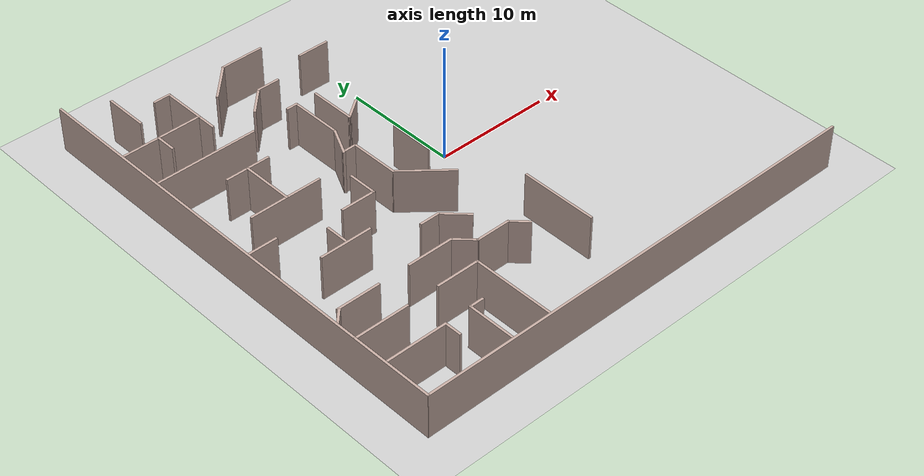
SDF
<sdf version="1.7">
 <world name="default">
  <model name="ground_plane">
   <static>1</static>
   <link name="link">
    <collision name="collision">
     <geometry><plane><normal>0 0 1</normal><size>100 100</size></plane></geometry>
     <surface><friction><ode><mu>100</mu><mu2>50</mu2></ode></friction></surface>
    </collision>
    <visual name="visual">
     <cast_shadows>0</cast_shadows>
     <geometry><plane><normal>0 0 1</normal><size>100 100</size></plane></geometry>
     <material>
      <script><uri>file://media/materials/scripts/gazebo.material</uri><name>Gazebo/Grey</name></script>
     </material>
    </visual>
   </link>
  </model>
  <model name="Untitled">
   <pose>-0.005486 -0.005193 0 0 -0 0</pose>
   <link name="Wall_111">
    <collision name="Wall_111_Collision">
     <geometry><box><size>4 0.2 5.0</size></box></geometry>
     <pose>0 0 1.25 0 -0 0</pose>
    </collision>
    <visual name="Wall_111_Visual">
     <pose>0 0 1.25 0 -0 0</pose>
     <geometry><box><size>4 0.2 5.0</size></box></geometry>
     <material>
      <script><uri>file://media/materials/scripts/gazebo.material</uri><name>Gazebo/Grey</name></script>
      <ambient>0.760784 0.662745 0.627451 1</ambient>
     </material>
     <meta><layer>0</layer></meta>
    </visual>
    <pose>-10.7354 -10.1332 0 0 -0 0</pose>
   </link>
   <link name="Wall_112">
    <collision name="Wall_112_Collision">
     <geometry><box><size>2 0.2 5.0</size></box></geometry>
     <pose>0 0 1.25 0 -0 0</pose>
    </collision>
    <visual name="Wall_112_Visual">
     <pose>0 0 1.25 0 -0 0</pose>
     <geometry><box><size>2 0.2 5.0</size></box></geometry>
     <material>
      <script><uri>file://media/materials/scripts/gazebo.material</uri><name>Gazebo/Grey</name></script>
      <ambient>0.760784 0.662745 0.627451 1</ambient>
     </material>
     <meta><layer>0</layer></meta>
    </visual>
    <pose>-8.15628 -10.7873 0 0 -0 -0.785398</pose>
   </link>
   <link name="Wall_113">
    <collision name="Wall_113_Collision">
     <geometry><box><size>3 0.2 5.0</size></box></geometry>
     <pose>0 0 1.25 0 -0 0</pose>
    </collision>
    <visual name="Wall_113_Visual">
     <pose>0 0 1.25 0 -0 0</pose>
     <geometry><box><size>3 0.2 5.0</size></box></geometry>
     <material>
      <script><uri>file://media/materials/scripts/gazebo.material</uri><name>Gazebo/Grey</name></script>
      <ambient>0.760784 0.662745 0.627451 1</ambient>
     </material>
     <meta><layer>0</layer></meta>
    </visual>
    <pose>-6.07721 -11.4414 0 0 -0 0</pose>
   </link>
   <link name="Wall_114">
    <collision name="Wall_114_Collision">
     <geometry><box><size>1.75 0.2 5.0</size></box></geometry>
     <pose>0 0 1.25 0 -0 0</pose>
    </collision>
    <visual name="Wall_114_Visual">
     <pose>0 0 1.25 0 -0 0</pose>
     <geometry><box><size>1.75 0.2 5.0</size></box></geometry>
     <material>
      <script><uri>file://media/materials/scripts/gazebo.material</uri><name>Gazebo/Grey</name></script>
      <ambient>0.760784 0.662745 0.627451 1</ambient>
     </material>
     <meta><layer>0</layer></meta>
    </visual>
    <pose>-4.08652 -12.0071 0 0 -0 -0.785398</pose>
   </link>
   <link name="Wall_117">
    <collision name="Wall_117_Collision">
     <geometry><box><size>1.75 0.2 5.0</size></box></geometry>
     <pose>0 0 1.25 0 -0 0</pose>
    </collision>
    <visual name="Wall_117_Visual">
     <pose>0 0 1.25 0 -0 0</pose>
     <geometry><box><size>1.75 0.2 5.0</size></box></geometry>
     <material>
      <script><uri>file://media/materials/scripts/gazebo.material</uri><name>Gazebo/Grey</name></script>
      <ambient>0.760784 0.662745 0.627451 1</ambient>
     </material>
     <meta><layer>0</layer></meta>
    </visual>
    <pose>-8.42737 -7.57456 0 0 -0 0</pose>
   </link>
   <link name="Wall_118">
    <collision name="Wall_118_Collision">
     <geometry><box><size>2.5 0.2 5.0</size></box></geometry>
     <pose>0 0 1.25 0 -0 0</pose>
    </collision>
    <visual name="Wall_118_Visual">
     <pose>0 0 1.25 0 -0 0</pose>
     <geometry><box><size>2.5 0.2 5.0</size></box></geometry>
     <material>
      <script><uri>file://media/materials/scripts/gazebo.material</uri><name>Gazebo/Grey</name></script>
      <ambient>0.760784 0.662745 0.627451 1</ambient>
     </material>
     <meta><layer>0</layer></meta>
    </visual>
    <pose>-6.79652 -8.40541 0 0 -0 -0.785398</pose>
   </link>
   <link name="Wall_124">
    <collision name="Wall_124_Collision">
     <geometry><box><size>3.75 0.2 5.0</size></box></geometry>
     <pose>0 0 1.25 0 -0 0</pose>
    </collision>
    <visual name="Wall_124_Visual">
     <pose>0 0 1.25 0 -0 0</pose>
     <geometry><box><size>3.75 0.2 5.0</size></box></geometry>
     <material>
      <script><uri>file://media/materials/scripts/gazebo.material</uri><name>Gazebo/Grey</name></script>
      <ambient>0.760784 0.662745 0.627451 1</ambient>
     </material>
     <meta><layer>0</layer></meta>
    </visual>
    <pose>-17.2339 -10.1618 0 0 -0 3.14159</pose>
   </link>
   <link name="Wall_126">
    <collision name="Wall_126_Collision">
     <geometry><box><size>1.5 0.2 5.0</size></box></geometry>
     <pose>0 0 1.25 0 -0 0</pose>
    </collision>
    <visual name="Wall_126_Visual">
     <pose>0 0 1.25 0 -0 0</pose>
     <geometry><box><size>1.5 0.2 5.0</size></box></geometry>
     <material>
      <script><uri>file://media/materials/scripts/gazebo.material</uri><name>Gazebo/Grey</name></script>
      <ambient>0.760784 0.662745 0.627451 1</ambient>
     </material>
     <meta><layer>0</layer></meta>
    </visual>
    <pose>-19.4759 -10.735 0 0 -0 -2.35619</pose>
   </link>
   <link name="Wall_129">
    <collision name="Wall_129_Collision">
     <geometry><box><size>6.25 0.2 5.0</size></box></geometry>
     <pose>0 0 1.25 0 -0 0</pose>
    </collision>
    <visual name="Wall_129_Visual">
     <pose>0 0 1.25 0 -0 0</pose>
     <geometry><box><size>6.25 0.2 5.0</size></box></geometry>
     <material>
      <script><uri>file://media/materials/scripts/gazebo.material</uri><name>Gazebo/Grey</name></script>
      <ambient>0.760784 0.662745 0.627451 1</ambient>
     </material>
     <meta><layer>0</layer></meta>
    </visual>
    <pose>-14.3181 0.917557 0 0 -0 0</pose>
   </link>
   <link name="Wall_131">
    <collision name="Wall_131_Collision">
     <geometry><box><size>4.5 0.2 5.0</size></box></geometry>
     <pose>0 0 1.25 0 -0 0</pose>
    </collision>
    <visual name="Wall_131_Visual">
     <pose>0 0 1.25 0 -0 0</pose>
     <geometry><box><size>4.5 0.2 5.0</size></box></geometry>
     <material>
      <script><uri>file://media/materials/scripts/gazebo.material</uri><name>Gazebo/Grey</name></script>
      <ambient>0.760784 0.662745 0.627451 1</ambient>
     </material>
     <meta><layer>0</layer></meta>
    </visual>
    <pose>-14.2126 3.09256 0 0 -0 1.5708</pose>
   </link>
   <link name="Wall_133">
    <collision name="Wall_133_Collision">
     <geometry><box><size>2 0.2 5.0</size></box></geometry>
     <pose>0 0 1.25 0 -0 0</pose>
    </collision>
    <visual name="Wall_133_Visual">
     <pose>0 0 1.25 0 -0 0</pose>
     <geometry><box><size>2 0.2 5.0</size></box></geometry>
     <material>
      <script><uri>file://media/materials/scripts/gazebo.material</uri><name>Gazebo/Grey</name></script>
      <ambient>0.760784 0.662745 0.627451 1</ambient>
     </material>
     <meta><layer>0</layer></meta>
    </visual>
    <pose>-15.1376 5.26756 0 0 -0 3.14159</pose>
   </link>
   <link name="Wall_135">
    <collision name="Wall_135_Collision">
     <geometry><box><size>2 0.2 5.0</size></box></geometry>
     <pose>0 0 1.25 0 -0 0</pose>
    </collision>
    <visual name="Wall_135_Visual">
     <pose>0 0 1.25 0 -0 0</pose>
     <geometry><box><size>2 0.2 5.0</size></box></geometry>
     <material>
      <script><uri>file://media/materials/scripts/gazebo.material</uri><name>Gazebo/Grey</name></script>
      <ambient>0.760784 0.662745 0.627451 1</ambient>
     </material>
     <meta><layer>0</layer></meta>
    </visual>
    <pose>-13.2876 5.26756 0 0 -0 0</pose>
   </link>
   <link name="Wall_138">
    <collision name="Wall_138_Collision">
     <geometry><box><size>8.75 0.2 5.0</size></box></geometry>
     <pose>0 0 1.25 0 -0 0</pose>
    </collision>
    <visual name="Wall_138_Visual">
     <pose>0 0 1.25 0 -0 0</pose>
     <geometry><box><size>8.75 0.2 5.0</size></box></geometry>
     <material>
      <script><uri>file://media/materials/scripts/gazebo.material</uri><name>Gazebo/Grey</name></script>
      <ambient>0.760784 0.662745 0.627451 1</ambient>
     </material>
     <meta><layer>0</layer></meta>
    </visual>
    <pose>-15.5484 8.29372 0 0 -0 0</pose>
   </link>
   <link name="Wall_140">
    <collision name="Wall_140_Collision">
     <geometry><box><size>7 0.2 5.0</size></box></geometry>
     <pose>0 0 1.25 0 -0 0</pose>
    </collision>
    <visual name="Wall_140_Visual">
     <pose>0 0 1.25 0 -0 0</pose>
     <geometry><box><size>7 0.2 5.0</size></box></geometry>
     <material>
      <script><uri>file://media/materials/scripts/gazebo.material</uri><name>Gazebo/Grey</name></script>
      <ambient>0.760784 0.662745 0.627451 1</ambient>
     </material>
     <meta><layer>0</layer></meta>
    </visual>
    <pose>-16.5008 12.3663 0 0 -0 3.14159</pose>
   </link>
   <link name="Wall_143">
    <collision name="Wall_143_Collision">
     <geometry><box><size>1.75 0.2 5.0</size></box></geometry>
     <pose>0 0 1.25 0 -0 0</pose>
    </collision>
    <visual name="Wall_143_Visual">
     <pose>0 0 1.25 0 -0 0</pose>
     <geometry><box><size>1.75 0.2 5.0</size></box></geometry>
     <material>
      <script><uri>file://media/materials/scripts/gazebo.material</uri><name>Gazebo/Grey</name></script>
      <ambient>0.760784 0.662745 0.627451 1</ambient>
     </material>
     <meta><layer>0</layer></meta>
    </visual>
    <pose>-16.7592 11.5249 0 0 -0 -1.5708</pose>
   </link>
   <link name="Wall_145">
    <collision name="Wall_145_Collision">
     <geometry><box><size>1.75 0.2 5.0</size></box></geometry>
     <pose>0 0 1.25 0 -0 0</pose>
    </collision>
    <visual name="Wall_145_Visual">
     <pose>0 0 1.25 0 -0 0</pose>
     <geometry><box><size>1.75 0.2 5.0</size></box></geometry>
     <material>
      <script><uri>file://media/materials/scripts/gazebo.material</uri><name>Gazebo/Grey</name></script>
      <ambient>0.760784 0.662745 0.627451 1</ambient>
     </material>
     <meta><layer>0</layer></meta>
    </visual>
    <pose>-13.0758 11.5663 0 0 -0 -1.5708</pose>
   </link>
   <link name="Wall_147">
    <collision name="Wall_147_Collision">
     <geometry><box><size>3.75 0.2 5.0</size></box></geometry>
     <pose>0 0 1.25 0 -0 0</pose>
    </collision>
    <visual name="Wall_147_Visual">
     <pose>0 0 1.25 0 -0 0</pose>
     <geometry><box><size>3.75 0.2 5.0</size></box></geometry>
     <material>
      <script><uri>file://media/materials/scripts/gazebo.material</uri><name>Gazebo/Grey</name></script>
      <ambient>0.760784 0.662745 0.627451 1</ambient>
     </material>
     <meta><layer>0</layer></meta>
    </visual>
    <pose>-13.0758 14.1663 0 0 -0 1.5708</pose>
   </link>
   <link name="Wall_149">
    <collision name="Wall_149_Collision">
     <geometry><box><size>3.75 0.2 5.0</size></box></geometry>
     <pose>0 0 1.25 0 -0 0</pose>
    </collision>
    <visual name="Wall_149_Visual">
     <pose>0 0 1.25 0 -0 0</pose>
     <geometry><box><size>3.75 0.2 5.0</size></box></geometry>
     <material>
      <script><uri>file://media/materials/scripts/gazebo.material</uri><name>Gazebo/Grey</name></script>
      <ambient>0.760784 0.662745 0.627451 1</ambient>
     </material>
     <meta><layer>0</layer></meta>
    </visual>
    <pose>-16.6778 16.4649 0 0 -0 -1.5708</pose>
   </link>
   <link name="Wall_151">
    <collision name="Wall_151_Collision">
     <geometry><box><size>1.5 0.2 5.0</size></box></geometry>
     <pose>0 0 1.25 0 -0 0</pose>
    </collision>
    <visual name="Wall_151_Visual">
     <pose>0 0 1.25 0 -0 0</pose>
     <geometry><box><size>1.5 0.2 5.0</size></box></geometry>
     <material>
      <script><uri>file://media/materials/scripts/gazebo.material</uri><name>Gazebo/Grey</name></script>
      <ambient>0.760784 0.662745 0.627451 1</ambient>
     </material>
     <meta><layer>0</layer></meta>
    </visual>
    <pose>-13.7508 15.9663 0 0 -0 3.14159</pose>
   </link>
   <link name="Wall_17">
    <collision name="Wall_17_Collision">
     <geometry><box><size>4.75 0.2 5.0</size></box></geometry>
     <pose>0 0 1.25 0 -0 0</pose>
    </collision>
    <visual name="Wall_17_Visual">
     <pose>0 0 1.25 0 -0 0</pose>
     <geometry><box><size>4.75 0.2 5.0</size></box></geometry>
     <material>
      <script><uri>file://media/materials/scripts/gazebo.material</uri><name>Gazebo/Grey</name></script>
      <ambient>0.760784 0.662745 0.627451 1</ambient>
     </material>
     <meta><layer>0</layer></meta>
    </visual>
    <pose>-17.7055 -13.0098 0 0 -0 0</pose>
   </link>
   <link name="Wall_175">
    <collision name="Wall_175_Collision">
     <geometry><box><size>2.5 0.2 5.0</size></box></geometry>
     <pose>0 0 1.25 0 -0 0</pose>
    </collision>
    <visual name="Wall_175_Visual">
     <pose>0 0 1.25 0 -0 0</pose>
     <geometry><box><size>2.5 0.2 5.0</size></box></geometry>
     <material>
      <script><uri>file://media/materials/scripts/gazebo.material</uri><name>Gazebo/Grey</name></script>
      <ambient>0.760784 0.662745 0.627451 1</ambient>
     </material>
     <meta><layer>0</layer></meta>
    </visual>
    <pose>-18.6845 -1.93146 0 0 -0 0</pose>
   </link>
   <link name="Wall_189">
    <collision name="Wall_189_Collision">
     <geometry><box><size>3.75 0.2 5.0</size></box></geometry>
     <pose>0 0 1.25 0 -0 0</pose>
    </collision>
    <visual name="Wall_189_Visual">
     <pose>0 0 1.25 0 -0 0</pose>
     <geometry><box><size>3.75 0.2 5.0</size></box></geometry>
     <material>
      <script><uri>file://media/materials/scripts/gazebo.material</uri><name>Gazebo/Grey</name></script>
      <ambient>0.760784 0.662745 0.627451 1</ambient>
     </material>
     <meta><layer>0</layer></meta>
    </visual>
    <pose>-9.30498 14.6613 0 0 -0 0.785398</pose>
   </link>
   <link name="Wall_19">
    <collision name="Wall_19_Collision">
     <geometry><box><size>3.75 0.2 5.0</size></box></geometry>
     <pose>0 0 1.25 0 -0 0</pose>
    </collision>
    <visual name="Wall_19_Visual">
     <pose>0 0 1.25 0 -0 0</pose>
     <geometry><box><size>3.75 0.2 5.0</size></box></geometry>
     <material>
      <script><uri>file://media/materials/scripts/gazebo.material</uri><name>Gazebo/Grey</name></script>
      <ambient>0.760784 0.662745 0.627451 1</ambient>
     </material>
     <meta><layer>0</layer></meta>
    </visual>
    <pose>-10.8358 -12.987 0 0 -0 0</pose>
   </link>
   <link name="Wall_190">
    <collision name="Wall_190_Collision">
     <geometry><box><size>3.75 0.2 5.0</size></box></geometry>
     <pose>0 0 1.25 0 -0 0</pose>
    </collision>
    <visual name="Wall_190_Visual">
     <pose>0 0 1.25 0 -0 0</pose>
     <geometry><box><size>3.75 0.2 5.0</size></box></geometry>
     <material>
      <script><uri>file://media/materials/scripts/gazebo.material</uri><name>Gazebo/Grey</name></script>
      <ambient>0.760784 0.662745 0.627451 1</ambient>
     </material>
     <meta><layer>0</layer></meta>
    </visual>
    <pose>-6.23219 15.9341 0 0 -0 0</pose>
   </link>
   <link name="Wall_193">
    <collision name="Wall_193_Collision">
     <geometry><box><size>2.75 0.2 5.0</size></box></geometry>
     <pose>0 0 1.25 0 -0 0</pose>
    </collision>
    <visual name="Wall_193_Visual">
     <pose>0 0 1.25 0 -0 0</pose>
     <geometry><box><size>2.75 0.2 5.0</size></box></geometry>
     <material>
      <script><uri>file://media/materials/scripts/gazebo.material</uri><name>Gazebo/Grey</name></script>
      <ambient>0.760784 0.662745 0.627451 1</ambient>
     </material>
     <meta><layer>0</layer></meta>
    </visual>
    <pose>-1.52402 13.1394 0 0 -0 0</pose>
   </link>
   <link name="Wall_2">
    <collision name="Wall_2_Collision">
     <geometry><box><size>40.15 0.2 5.0</size></box></geometry>
     <pose>0 0 1.25 0 -0 0</pose>
    </collision>
    <visual name="Wall_2_Visual">
     <pose>0 0 1.25 0 -0 0</pose>
     <geometry><box><size>40.15 0.2 5.0</size></box></geometry>
     <material>
      <script><uri>file://media/materials/scripts/gazebo.material</uri><name>Gazebo/Grey</name></script>
      <ambient>0.760784 0.662745 0.627451 1</ambient>
     </material>
     <meta><layer>0</layer></meta>
    </visual>
    <pose>0.005486 -19.9948 0 0 -0 3.14159</pose>
   </link>
   <link name="Wall_20">
    <collision name="Wall_20_Collision">
     <geometry><box><size>7 0.2 5.0</size></box></geometry>
     <pose>0 0 1.25 0 -0 0</pose>
    </collision>
    <visual name="Wall_20_Visual">
     <pose>0 0 1.25 0 -0 0</pose>
     <geometry><box><size>7 0.2 5.0</size></box></geometry>
     <material>
      <script><uri>file://media/materials/scripts/gazebo.material</uri><name>Gazebo/Grey</name></script>
      <ambient>0.760784 0.662745 0.627451 1</ambient>
     </material>
     <meta><layer>0</layer></meta>
    </visual>
    <pose>-9.03579 -16.412 0 0 -0 -1.5708</pose>
   </link>
   <link name="Wall_206">
    <collision name="Wall_206_Collision">
     <geometry><box><size>1 0.2 5.0</size></box></geometry>
     <pose>0 0 1.25 0 -0 0</pose>
    </collision>
    <visual name="Wall_206_Visual">
     <pose>0 0 1.25 0 -0 0</pose>
     <geometry><box><size>1 0.2 5.0</size></box></geometry>
     <material>
      <script><uri>file://media/materials/scripts/gazebo.material</uri><name>Gazebo/Grey</name></script>
      <ambient>0.760784 0.662745 0.627451 1</ambient>
     </material>
     <meta><layer>0</layer></meta>
    </visual>
    <pose>-7.29659 8.66562 0 0 -0 3.14159</pose>
   </link>
   <link name="Wall_208">
    <collision name="Wall_208_Collision">
     <geometry><box><size>2.75 0.2 5.0</size></box></geometry>
     <pose>0 0 1.25 0 -0 0</pose>
    </collision>
    <visual name="Wall_208_Visual">
     <pose>0 0 1.25 0 -0 0</pose>
     <geometry><box><size>2.75 0.2 5.0</size></box></geometry>
     <material>
      <script><uri>file://media/materials/scripts/gazebo.material</uri><name>Gazebo/Grey</name></script>
      <ambient>0.760784 0.662745 0.627451 1</ambient>
     </material>
     <meta><layer>0</layer></meta>
    </visual>
    <pose>-8.76977 11.0057 0 0 -0 0.785398</pose>
   </link>
   <link name="Wall_209">
    <collision name="Wall_209_Collision">
     <geometry><box><size>2 0.2 5.0</size></box></geometry>
     <pose>0 0 1.25 0 -0 0</pose>
    </collision>
    <visual name="Wall_209_Visual">
     <pose>0 0 1.25 0 -0 0</pose>
     <geometry><box><size>2 0.2 5.0</size></box></geometry>
     <material>
      <script><uri>file://media/materials/scripts/gazebo.material</uri><name>Gazebo/Grey</name></script>
      <ambient>0.760784 0.662745 0.627451 1</ambient>
     </material>
     <meta><layer>0</layer></meta>
    </visual>
    <pose>-6.92553 11.925 0 0 -0 0</pose>
   </link>
   <link name="Wall_22">
    <collision name="Wall_22_Collision">
     <geometry><box><size>5.25 0.2 5.0</size></box></geometry>
     <pose>0 0 1.25 0 -0 0</pose>
    </collision>
    <visual name="Wall_22_Visual">
     <pose>0 0 1.25 0 -0 0</pose>
     <geometry><box><size>5.25 0.2 5.0</size></box></geometry>
     <material>
      <script><uri>file://media/materials/scripts/gazebo.material</uri><name>Gazebo/Grey</name></script>
      <ambient>0.760784 0.662745 0.627451 1</ambient>
     </material>
     <meta><layer>0</layer></meta>
    </visual>
    <pose>-17.2912 -15.9814 0 0 -0 0</pose>
   </link>
   <link name="Wall_23">
    <collision name="Wall_23_Collision">
     <geometry><box><size>1.5 0.2 5.0</size></box></geometry>
     <pose>0 0 1.25 0 -0 0</pose>
    </collision>
    <visual name="Wall_23_Visual">
     <pose>0 0 1.25 0 -0 0</pose>
     <geometry><box><size>1.5 0.2 5.0</size></box></geometry>
     <material>
      <script><uri>file://media/materials/scripts/gazebo.material</uri><name>Gazebo/Grey</name></script>
      <ambient>0.760784 0.662745 0.627451 1</ambient>
     </material>
     <meta><layer>0</layer></meta>
    </visual>
    <pose>-14.7412 -16.6564 0 0 -0 -1.5708</pose>
   </link>
   <link name="Wall_25">
    <collision name="Wall_25_Collision">
     <geometry><box><size>4.25 0.2 5.0</size></box></geometry>
     <pose>0 0 1.25 0 -0 0</pose>
    </collision>
    <visual name="Wall_25_Visual">
     <pose>0 0 1.25 0 -0 0</pose>
     <geometry><box><size>4.25 0.2 5.0</size></box></geometry>
     <material>
      <script><uri>file://media/materials/scripts/gazebo.material</uri><name>Gazebo/Grey</name></script>
      <ambient>0.760784 0.662745 0.627451 1</ambient>
     </material>
     <meta><layer>0</layer></meta>
    </visual>
    <pose>-12.4486 -17.9552 0 0 -0 1.5708</pose>
   </link>
   <link name="Wall_26">
    <collision name="Wall_26_Collision">
     <geometry><box><size>1.25 0.2 5.0</size></box></geometry>
     <pose>0 0 1.25 0 -0 0</pose>
    </collision>
    <visual name="Wall_26_Visual">
     <pose>0 0 1.25 0 -0 0</pose>
     <geometry><box><size>1.25 0.2 5.0</size></box></geometry>
     <material>
      <script><uri>file://media/materials/scripts/gazebo.material</uri><name>Gazebo/Grey</name></script>
      <ambient>0.760784 0.662745 0.627451 1</ambient>
     </material>
     <meta><layer>0</layer></meta>
    </visual>
    <pose>-11.8986 -15.9052 0 0 -0 0</pose>
   </link>
   <link name="Wall_35">
    <collision name="Wall_35_Collision">
     <geometry><box><size>4.15 0.2 5.0</size></box></geometry>
     <pose>0 0 1.25 0 -0 0</pose>
    </collision>
    <visual name="Wall_35_Visual">
     <pose>0 0 1.25 0 -0 0</pose>
     <geometry><box><size>4.15 0.2 5.0</size></box></geometry>
     <material>
      <script><uri>file://media/materials/scripts/gazebo.material</uri><name>Gazebo/Grey</name></script>
      <ambient>0.760784 0.662745 0.627451 1</ambient>
     </material>
     <meta><layer>0</layer></meta>
    </visual>
    <pose>-6.85451 0.005193 0 0 -0 1.5708</pose>
   </link>
   <link name="Wall_4">
    <collision name="Wall_4_Collision">
     <geometry><box><size>40.15 0.2 5.0</size></box></geometry>
     <pose>0 0 1.25 0 -0 0</pose>
    </collision>
    <visual name="Wall_4_Visual">
     <pose>0 0 1.25 0 -0 0</pose>
     <geometry><box><size>40.15 0.2 5.0</size></box></geometry>
     <material>
      <script><uri>file://media/materials/scripts/gazebo.material</uri><name>Gazebo/Grey</name></script>
      <ambient>0.760784 0.662745 0.627451 1</ambient>
     </material>
     <meta><layer>0</layer></meta>
    </visual>
    <pose>-19.9945 0.005193 0 0 -0 1.5708</pose>
   </link>
   <link name="Wall_42">
    <collision name="Wall_42_Collision">
     <geometry><box><size>2.14235 0.2 5.0</size></box></geometry>
     <pose>0 0 1.25 0 -0 0</pose>
    </collision>
    <visual name="Wall_42_Visual">
     <pose>0 0 1.25 0 -0 0</pose>
     <geometry><box><size>2.14235 0.2 5.0</size></box></geometry>
     <material>
      <script><uri>file://media/materials/scripts/gazebo.material</uri><name>Gazebo/Grey</name></script>
      <ambient>0.760784 0.662745 0.627451 1</ambient>
     </material>
     <meta><layer>0</layer></meta>
    </visual>
    <pose>-4.21491 5.41057 0 0 -0 -2.51068</pose>
   </link>
   <link name="Wall_44">
    <collision name="Wall_44_Collision">
     <geometry><box><size>4.7174 0.2 5.0</size></box></geometry>
     <pose>0 0 1.25 0 -0 0</pose>
    </collision>
    <visual name="Wall_44_Visual">
     <pose>0 0 1.25 0 -0 0</pose>
     <geometry><box><size>4.7174 0.2 5.0</size></box></geometry>
     <material>
      <script><uri>file://media/materials/scripts/gazebo.material</uri><name>Gazebo/Grey</name></script>
      <ambient>0.760784 0.662745 0.627451 1</ambient>
     </material>
     <meta><layer>0</layer></meta>
    </visual>
    <pose>-5.13251 -3.49481 0 0 -0 -0.716606</pose>
   </link>
   <link name="Wall_48">
    <collision name="Wall_48_Collision">
     <geometry><box><size>6.5 0.2 5.0</size></box></geometry>
     <pose>0 0 1.25 0 -0 0</pose>
    </collision>
    <visual name="Wall_48_Visual">
     <pose>0 0 1.25 0 -0 0</pose>
     <geometry><box><size>6.5 0.2 5.0</size></box></geometry>
     <material>
      <script><uri>file://media/materials/scripts/gazebo.material</uri><name>Gazebo/Grey</name></script>
      <ambient>0.760784 0.662745 0.627451 1</ambient>
     </material>
     <meta><layer>0</layer></meta>
    </visual>
    <pose>-0.156897 -11.8936 0 0 -0 -1.5708</pose>
   </link>
   <link name="Wall_58">
    <collision name="Wall_58_Collision">
     <geometry><box><size>4 0.2 5.0</size></box></geometry>
     <pose>0 0 1.25 0 -0 0</pose>
    </collision>
    <visual name="Wall_58_Visual">
     <pose>0 0 1.25 0 -0 0</pose>
     <geometry><box><size>4 0.2 5.0</size></box></geometry>
     <material>
      <script><uri>file://media/materials/scripts/gazebo.material</uri><name>Gazebo/Grey</name></script>
      <ambient>0.760784 0.662745 0.627451 1</ambient>
     </material>
     <meta><layer>0</layer></meta>
    </visual>
    <pose>-5.01931 6.74794 0 0 -0 1.5708</pose>
   </link>
   <link name="Wall_60">
    <collision name="Wall_60_Collision">
     <geometry><box><size>1.25 0.2 5.0</size></box></geometry>
     <pose>0 0 1.25 0 -0 0</pose>
    </collision>
    <visual name="Wall_60_Visual">
     <pose>0 0 1.25 0 -0 0</pose>
     <geometry><box><size>1.25 0.2 5.0</size></box></geometry>
     <material>
      <script><uri>file://media/materials/scripts/gazebo.material</uri><name>Gazebo/Grey</name></script>
      <ambient>0.760784 0.662745 0.627451 1</ambient>
     </material>
     <meta><layer>0</layer></meta>
    </visual>
    <pose>-7.45296 2.0607 0 0 -0 3.14159</pose>
   </link>
   <link name="Wall_61">
    <collision name="Wall_61_Collision">
     <geometry><box><size>2.72076 0.2 5.0</size></box></geometry>
     <pose>0 0 1.25 0 -0 0</pose>
    </collision>
    <visual name="Wall_61_Visual">
     <pose>0 0 1.25 0 -0 0</pose>
     <geometry><box><size>2.72076 0.2 5.0</size></box></geometry>
     <material>
      <script><uri>file://media/materials/scripts/gazebo.material</uri><name>Gazebo/Grey</name></script>
      <ambient>0.760784 0.662745 0.627451 1</ambient>
     </material>
     <meta><layer>0</layer></meta>
    </visual>
    <pose>-7.43728 3.16141 0 0 -0 1.1151</pose>
   </link>
   <link name="Wall_62">
    <collision name="Wall_62_Collision">
     <geometry><box><size>4.5 0.2 5.0</size></box></geometry>
     <pose>0 0 1.25 0 -0 0</pose>
    </collision>
    <visual name="Wall_62_Visual">
     <pose>0 0 1.25 0 -0 0</pose>
     <geometry><box><size>4.5 0.2 5.0</size></box></geometry>
     <material>
      <script><uri>file://media/materials/scripts/gazebo.material</uri><name>Gazebo/Grey</name></script>
      <ambient>0.760784 0.662745 0.627451 1</ambient>
     </material>
     <meta><layer>0</layer></meta>
    </visual>
    <pose>-6.87159 6.49062 0 0 -0 1.5708</pose>
   </link>
   <link name="Wall_66">
    <collision name="Wall_66_Collision">
     <geometry><box><size>2.5 0.2 5.0</size></box></geometry>
     <pose>0 0 1.25 0 -0 0</pose>
    </collision>
    <visual name="Wall_66_Visual">
     <pose>0 0 1.25 0 -0 0</pose>
     <geometry><box><size>2.5 0.2 5.0</size></box></geometry>
     <material>
      <script><uri>file://media/materials/scripts/gazebo.material</uri><name>Gazebo/Grey</name></script>
      <ambient>0.760784 0.662745 0.627451 1</ambient>
     </material>
     <meta><layer>0</layer></meta>
    </visual>
    <pose>-9.36643 -1.58529 0 0 -0 -1.5708</pose>
   </link>
   <link name="Wall_67">
    <collision name="Wall_67_Collision">
     <geometry><box><size>3 0.2 5.0</size></box></geometry>
     <pose>0 0 1.25 0 -0 0</pose>
    </collision>
    <visual name="Wall_67_Visual">
     <pose>0 0 1.25 0 -0 0</pose>
     <geometry><box><size>3 0.2 5.0</size></box></geometry>
     <material>
      <script><uri>file://media/materials/scripts/gazebo.material</uri><name>Gazebo/Grey</name></script>
      <ambient>0.760784 0.662745 0.627451 1</ambient>
     </material>
     <meta><layer>0</layer></meta>
    </visual>
    <pose>-10.7914 -2.76029 0 0 -0 3.14159</pose>
   </link>
   <link name="Wall_69">
    <collision name="Wall_69_Collision">
     <geometry><box><size>2 0.2 5.0</size></box></geometry>
     <pose>0 0 1.25 0 -0 0</pose>
    </collision>
    <visual name="Wall_69_Visual">
     <pose>0 0 1.25 0 -0 0</pose>
     <geometry><box><size>2 0.2 5.0</size></box></geometry>
     <material>
      <script><uri>file://media/materials/scripts/gazebo.material</uri><name>Gazebo/Grey</name></script>
      <ambient>0.760784 0.662745 0.627451 1</ambient>
     </material>
     <meta><layer>0</layer></meta>
    </visual>
    <pose>-14.209 -4.46593 0 0 -0 -1.5708</pose>
   </link>
   <link name="Wall_71">
    <collision name="Wall_71_Collision">
     <geometry><box><size>4.5 0.2 5.0</size></box></geometry>
     <pose>0 0 1.25 0 -0 0</pose>
    </collision>
    <visual name="Wall_71_Visual">
     <pose>0 0 1.25 0 -0 0</pose>
     <geometry><box><size>4.5 0.2 5.0</size></box></geometry>
     <material>
      <script><uri>file://media/materials/scripts/gazebo.material</uri><name>Gazebo/Grey</name></script>
      <ambient>0.760784 0.662745 0.627451 1</ambient>
     </material>
     <meta><layer>0</layer></meta>
    </visual>
    <pose>-14.3147 -5.53206 0 0 -0 0</pose>
   </link>
   <link name="Wall_75">
    <collision name="Wall_75_Collision">
     <geometry><box><size>3.75 0.2 5.0</size></box></geometry>
     <pose>0 0 1.25 0 -0 0</pose>
    </collision>
    <visual name="Wall_75_Visual">
     <pose>0 0 1.25 0 -0 0</pose>
     <geometry><box><size>3.75 0.2 5.0</size></box></geometry>
     <material>
      <script><uri>file://media/materials/scripts/gazebo.material</uri><name>Gazebo/Grey</name></script>
      <ambient>0.760784 0.662745 0.627451 1</ambient>
     </material>
     <meta><layer>0</layer></meta>
    </visual>
    <pose>-3.27887 -0.00334 0 0 -0 -1.5708</pose>
   </link>
   <static>1</static>
  </model>
 </world>
</sdf>
